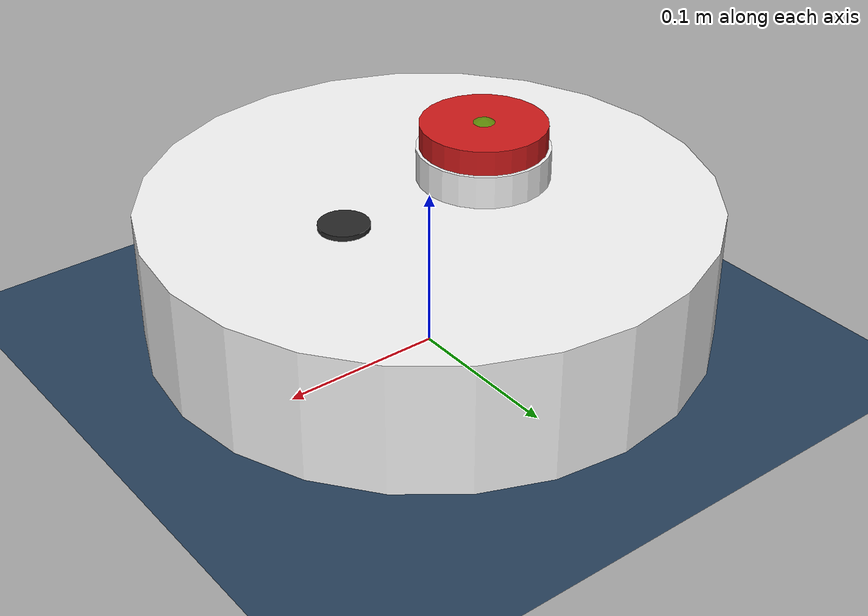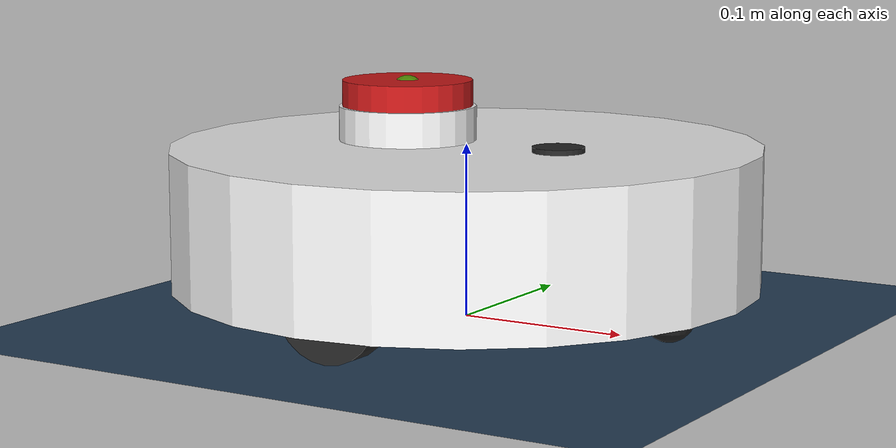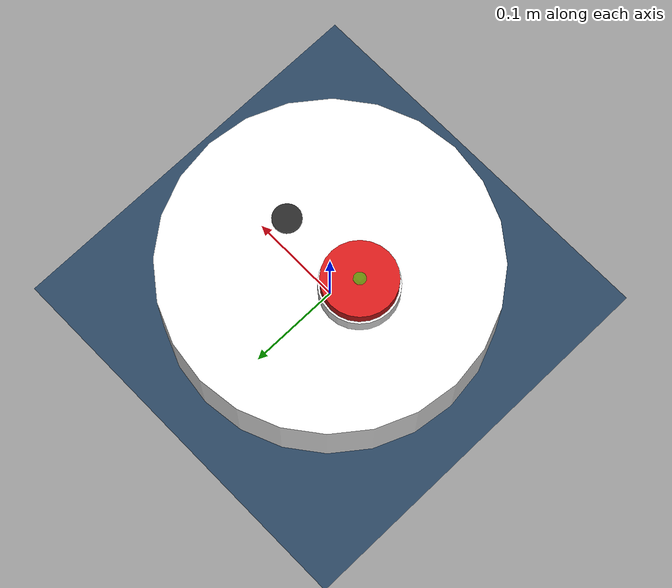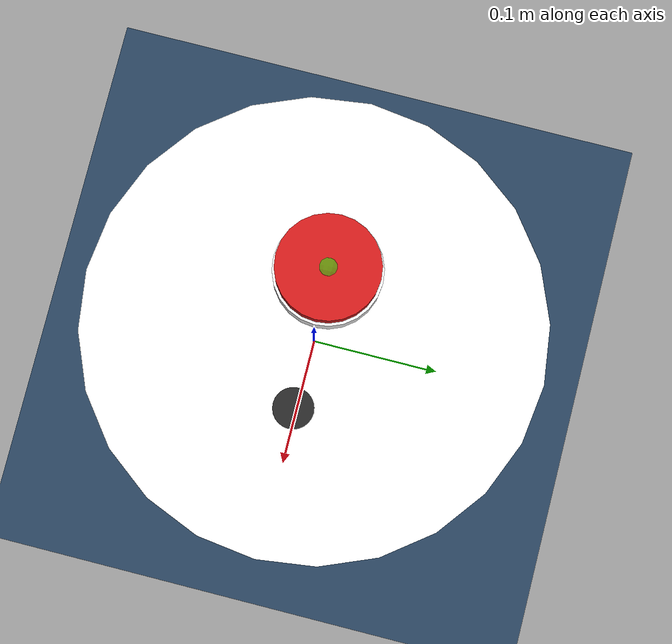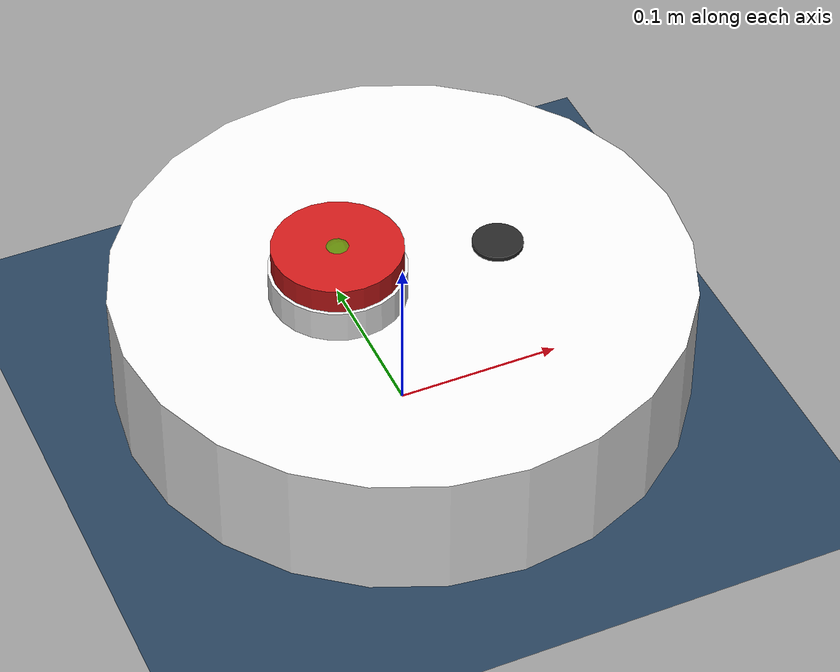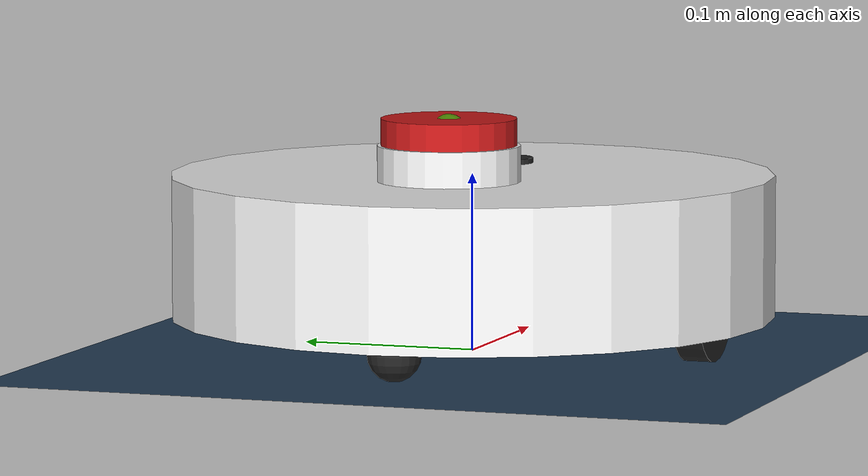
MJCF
<mujoco model="cleaning_robot">
  <compiler angle="degree" coordinate="local" inertiafromgeom="true"/>
  <option timestep="0.005" gravity="0 0 -9.81"/>

  <default>
    <joint damping="0.5" armature="0.01"/>
    <geom condim="3" friction="1 0.005 0.0001" solimp="0.9 0.95 0.001 0.5 2" solref="0.02 1"/>
    <motor ctrlrange="-2 2" ctrllimited="true"/>
  </default>

  <asset>
    <texture type="skybox" builtin="gradient" rgb1="0.9 0.9 1" rgb2="0.5 0.7 0.8" width="512" height="320"/>
    <texture name="grid" type="2d" builtin="checker" rgb1=".2 .3 .4" rgb2=".1 .2 .3" width="512" height="512" mark="edge" markrgb=".8 .8 .8"/>
    <material name="grid" texture="grid" texrepeat="5 5" reflectance=".2"/>
    <material name="white_plastic" rgba="0.95 0.95 0.95 1" specular="0.3" shininess="0.5"/>
    <material name="red_plastic" rgba="0.8 0.1 0.1 1" specular="0.3" shininess="0.5"/>
    <material name="dark_plastic" rgba="0.15 0.15 0.15 1" specular="0.1" shininess="0.5"/>
  </asset>

  <worldbody>
    <light pos="0 0 4" dir="0 0 -1" diffuse="0.8 0.8 0.8" specular="0.3 0.3 0.3" castshadow="true"/>
    <geom name="floor" size="4 4 .1" type="plane" material="grid"/>

    <!-- Robot Body -->
    <!-- Positioned slightly above ground (Wheel Radius 0.033m) -->
    <body name="robot" pos="0 0 0.033">
      <freejoint/>

      <!-- Main Chassis: White Cylinder -->
      <!-- Radius 0.17m, Height 0.08m (half-height 0.04) -->
      <!-- Lifted relative to wheel axle so bottom clears ground -->
      <geom name="chassis" type="cylinder" size="0.17 0.04" pos="0 0 0.027" material="white_plastic" mass="3.5"/>

      <!-- Lidar Tower -->
      <!-- Base -->
      <geom name="lidar_base" type="cylinder" size="0.04 0.01" pos="-0.04 0 0.077" material="white_plastic"/>
      <!-- Sensor Head (Red) -->
      <geom name="lidar_head" type="cylinder" size="0.038 0.0075" pos="-0.04 0 0.0945" material="red_plastic"/>
      <site name="lidar_site" pos="-0.04 0 0.0945" size="0.01" rgba="0 1 0 0.5" euler="0 90 0"/>

      <!-- Control Button -->
      <geom name="button" type="cylinder" size="0.015 0.002" pos="0.06 0 0.068" material="dark_plastic"/>

      <!-- LEFT WHEEL -->
      <body name="left_wheel" pos="0 0.135 0" zaxis="0 1 0">
        <joint name="left_wheel_joint" type="hinge" axis="0 0 1"/>
        <geom name="left_wheel_geom" type="cylinder" size="0.033 0.008" material="dark_plastic" friction="1.5 0.005 0.0001"/>
      </body>

      <!-- RIGHT WHEEL -->
      <body name="right_wheel" pos="0 -0.135 0" zaxis="0 1 0">
        <joint name="right_wheel_joint" type="hinge" axis="0 0 1"/>
        <geom name="right_wheel_geom" type="cylinder" size="0.033 0.008" material="dark_plastic" friction="1.5 0.005 0.0001"/>
      </body>

      <!-- CASTER WHEEL (Front Support) -->
      <!-- Sphere with low friction to simulate rolling caster -->
      <body name="front_caster" pos="0.13 0 -0.018">
        <geom name="front_caster_geom" type="sphere" size="0.015" material="dark_plastic" friction="0.01 0.01 0.01" mass="0.1"/>
      </body>

       <!-- CASTER WHEEL (Rear Support) -->
      <body name="rear_caster" pos="-0.13 0 -0.018">
        <geom name="rear_caster_geom" type="sphere" size="0.015" material="dark_plastic" friction="0.01 0.01 0.01" mass="0.1"/>
      </body>

    </body>
  </worldbody>

  <actuator>
    <!-- Differential Drive Motors (Automatic Mode) -->
    <!-- biasprm="1.5 0 0" restores automatic forward movement -->
    <general name="left_drive" joint="left_wheel_joint" gear="1" biastype="affine" biasprm="1.5 0 0" ctrlrange="-10 10" ctrllimited="true"/>
    <general name="right_drive" joint="right_wheel_joint" gear="1" biastype="affine" biasprm="1.5 0 0" ctrlrange="-10 10" ctrllimited="true"/>
  </actuator>

  <sensor>
    <rangefinder name="lidar_sensor" site="lidar_site" noise="0.01" />
    <gyro name="gyro" site="lidar_site" noise="0.001" />
  </sensor>

</mujoco>
